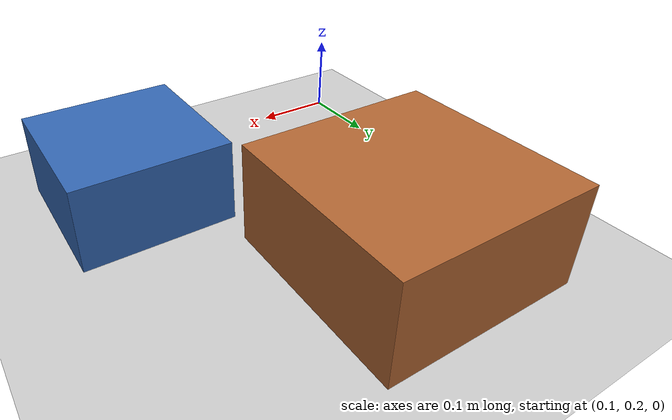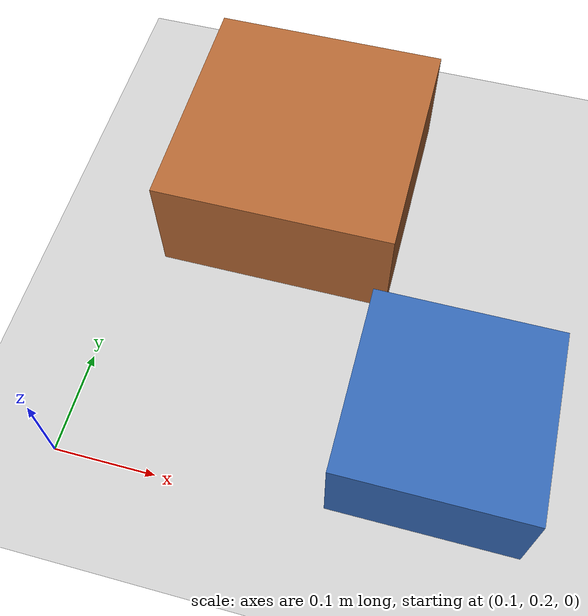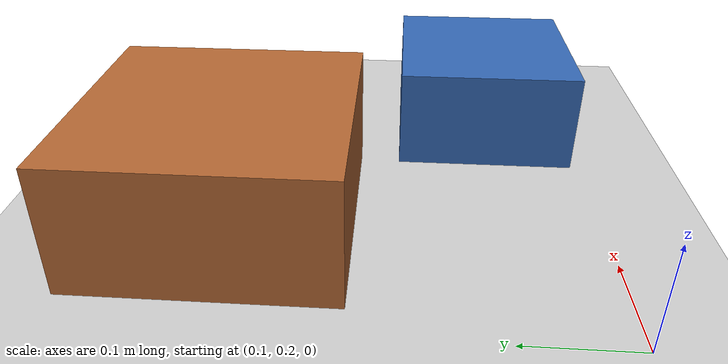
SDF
<?xml version="1.0" ?>
<sdf version="1.6">
  <world name="cell">
    <physics name="1ms" type="ignored">
      <max_step_size>0.001</max_step_size>
      <real_time_factor>1.0</real_time_factor>
    </physics>
    <plugin filename="gz-sim-physics-system"
            name="gz::sim::systems::Physics"/>
    <plugin filename="gz-sim-user-commands-system"
            name="gz::sim::systems::UserCommands"/>
    <plugin filename="gz-sim-scene-broadcaster-system"
            name="gz::sim::systems::SceneBroadcaster"/>
    <plugin filename="gz-sim-contact-system"
            name="gz::sim::systems::Contact"/>

    <light type="directional" name="sun">
      <cast_shadows>true</cast_shadows>
      <pose>0 0 10 0 0 0</pose>
      <diffuse>0.8 0.8 0.8 1</diffuse>
      <specular>0.2 0.2 0.2 1</specular>
      <attenuation>
        <range>1000</range>
        <constant>0.9</constant>
        <linear>0.01</linear>
        <quadratic>0.001</quadratic>
      </attenuation>
      <direction>-0.5 0.1 -0.9</direction>
    </light>

    <model name="ground_plane">
      <static>true</static>
      <link name="link">
        <collision name="collision">
          <geometry>
            <plane><normal>0 0 1</normal><size>100 100</size></plane>
          </geometry>
        </collision>
        <visual name="visual">
          <geometry>
            <plane><normal>0 0 1</normal><size>100 100</size></plane>
          </geometry>
          <material>
            <ambient>0.8 0.8 0.8 1</ambient>
            <diffuse>0.8 0.8 0.8 1</diffuse>
            <specular>0.8 0.8 0.8 1</specular>
          </material>
        </visual>
      </link>
    </model>

    <!-- ── source_1 feeder: box 0.18 x 0.18 x 0.10, base on ground ───────── -->
    <model name="source_1">
      <static>true</static>
      <pose>0.45 0.30 0.05 0 0 0</pose>
      <link name="link">
        <collision name="collision">
          <geometry><box><size>0.18 0.18 0.10</size></box></geometry>
        </collision>
        <visual name="visual">
          <geometry><box><size>0.18 0.18 0.10</size></box></geometry>
          <material>
            <ambient>0.2 0.4 0.7 1</ambient>
            <diffuse>0.2 0.4 0.7 1</diffuse>
          </material>
        </visual>
      </link>
    </model>

    <!-- ── sink_1 bin: box 0.24 x 0.24 x 0.12, base on ground ────────────── -->
    <model name="sink_1">
      <static>true</static>
      <pose>0.25 0.55 0.06 0 0 0</pose>
      <link name="link">
        <collision name="collision">
          <geometry><box><size>0.24 0.24 0.12</size></box></geometry>
        </collision>
        <visual name="visual">
          <geometry><box><size>0.24 0.24 0.12</size></box></geometry>
          <material>
            <ambient>0.7 0.4 0.2 1</ambient>
            <diffuse>0.7 0.4 0.2 1</diffuse>
          </material>
        </visual>
      </link>
    </model>

  </world>
</sdf>
